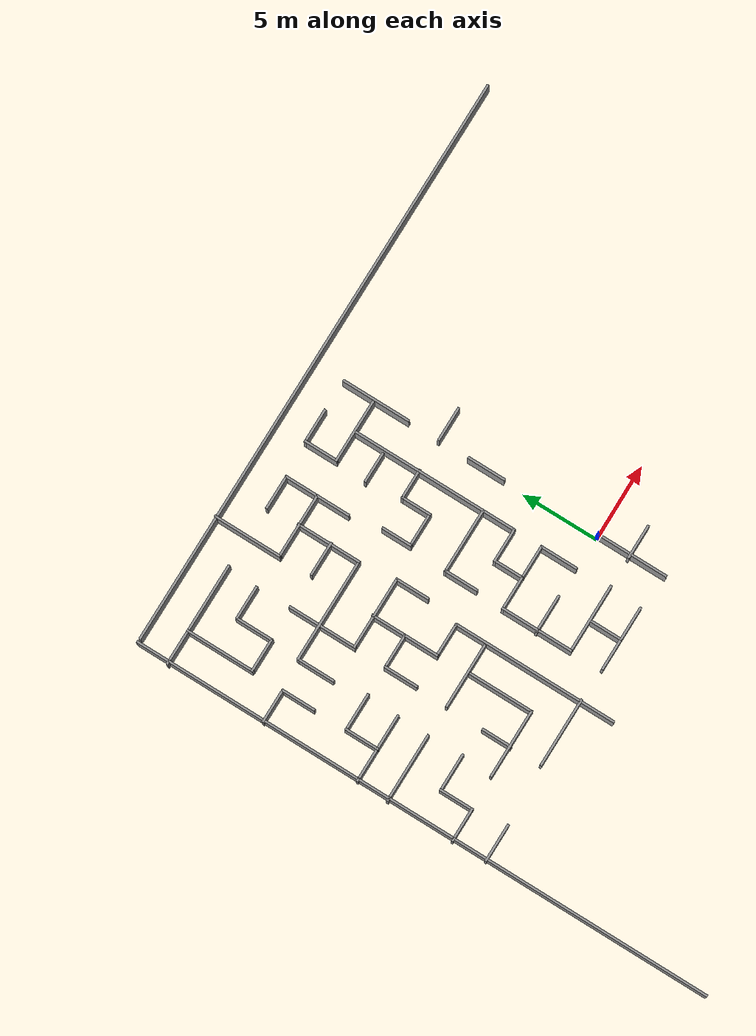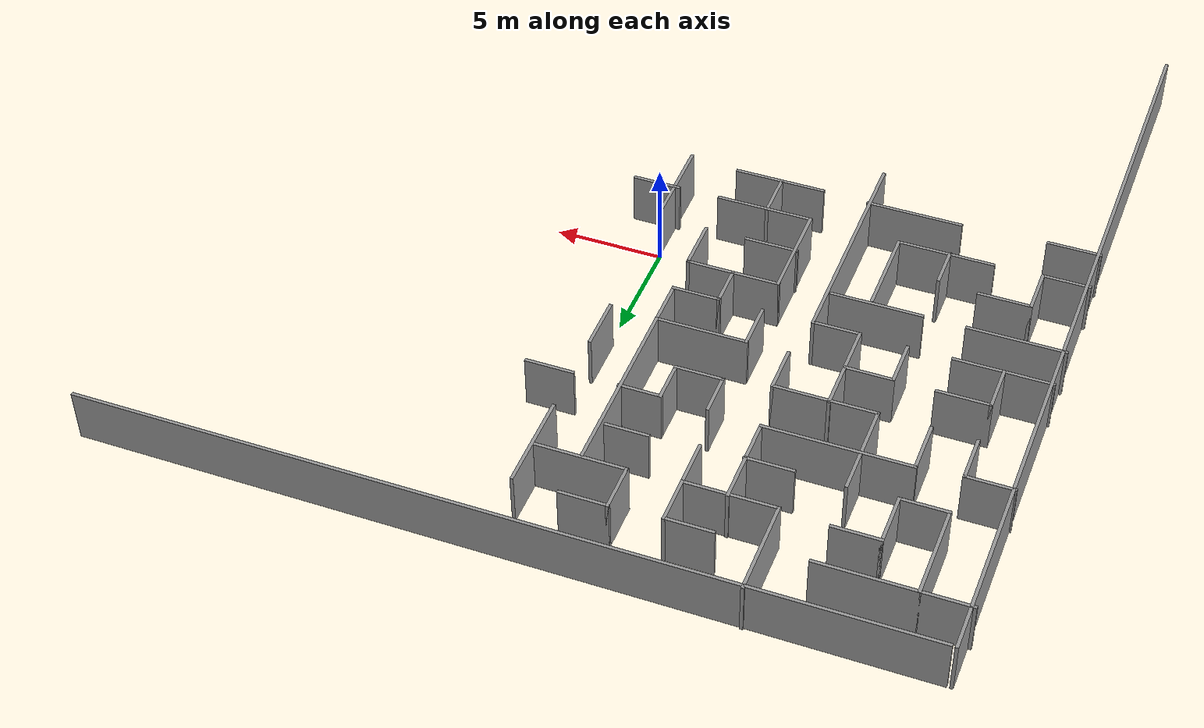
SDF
<sdf version="1.7">
 <model name="complex_maze">
  <pose>-0.002641 -0.038098 0 0 -0 0</pose>
  <link name="Wall_0">
   <collision name="Wall_0_Collision">
    <geometry><box><size>38.5 0.15 2.5</size></box></geometry>
    <pose>0 0 1.25 0 -0 0</pose>
   </collision>
   <visual name="Wall_0_Visual">
    <pose>0 0 1.25 0 -0 0</pose>
    <geometry><box><size>38.5 0.15 2.5</size></box></geometry>
    <material>
     <script><uri>file://media/materials/scripts/gazebo.material</uri><name>Gazebo/Grey</name></script>
     <ambient>1 1 1 1</ambient>
    </material>
    <meta><layer>0</layer></meta>
   </visual>
   <pose>-19.1643 0.058416 0 0 -0 -1.5708</pose>
  </link>
  <link name="Wall_10">
   <collision name="Wall_10_Collision">
    <geometry><box><size>2.5 0.15 2.5</size></box></geometry>
    <pose>0 0 1.25 0 -0 0</pose>
   </collision>
   <visual name="Wall_10_Visual">
    <pose>0 0 1.25 0 -0 0</pose>
    <geometry><box><size>2.5 0.15 2.5</size></box></geometry>
    <material>
     <script><uri>file://media/materials/scripts/gazebo.material</uri><name>Gazebo/Grey</name></script>
     <ambient>1 1 1 1</ambient>
    </material>
    <meta><layer>0</layer></meta>
   </visual>
   <pose>-14.9959 13.9601 0 0 -0 1.5708</pose>
  </link>
  <link name="Wall_11">
   <collision name="Wall_11_Collision">
    <geometry><box><size>2.25 0.15 2.5</size></box></geometry>
    <pose>0 0 1.25 0 -0 0</pose>
   </collision>
   <visual name="Wall_11_Visual">
    <pose>0 0 1.25 0 -0 0</pose>
    <geometry><box><size>2.25 0.15 2.5</size></box></geometry>
    <material>
     <script><uri>file://media/materials/scripts/gazebo.material</uri><name>Gazebo/Grey</name></script>
     <ambient>1 1 1 1</ambient>
    </material>
    <meta><layer>0</layer></meta>
   </visual>
   <pose>-13.9459 15.1351 0 0 -0 0</pose>
  </link>
  <link name="Wall_13">
   <collision name="Wall_13_Collision">
    <geometry><box><size>2.25 0.15 2.5</size></box></geometry>
    <pose>0 0 1.25 0 -0 0</pose>
   </collision>
   <visual name="Wall_13_Visual">
    <pose>0 0 1.25 0 -0 0</pose>
    <geometry><box><size>2.25 0.15 2.5</size></box></geometry>
    <material>
     <script><uri>file://media/materials/scripts/gazebo.material</uri><name>Gazebo/Grey</name></script>
     <ambient>1 1 1 1</ambient>
    </material>
    <meta><layer>0</layer></meta>
   </visual>
   <pose>-18.178 10.6988 0 0 -0 0</pose>
  </link>
  <link name="Wall_14">
   <collision name="Wall_14_Collision">
    <geometry><box><size>2.25 0.15 2.5</size></box></geometry>
    <pose>0 0 1.25 0 -0 0</pose>
   </collision>
   <visual name="Wall_14_Visual">
    <pose>0 0 1.25 0 -0 0</pose>
    <geometry><box><size>2.25 0.15 2.5</size></box></geometry>
    <material>
     <script><uri>file://media/materials/scripts/gazebo.material</uri><name>Gazebo/Grey</name></script>
     <ambient>1 1 1 1</ambient>
    </material>
    <meta><layer>0</layer></meta>
   </visual>
   <pose>-17.128 9.64878 0 0 -0 -1.5708</pose>
  </link>
  <link name="Wall_16">
   <collision name="Wall_16_Collision">
    <geometry><box><size>4.5 0.15 2.5</size></box></geometry>
    <pose>0 0 1.25 0 -0 0</pose>
   </collision>
   <visual name="Wall_16_Visual">
    <pose>0 0 1.25 0 -0 0</pose>
    <geometry><box><size>4.5 0.15 2.5</size></box></geometry>
    <material>
     <script><uri>file://media/materials/scripts/gazebo.material</uri><name>Gazebo/Grey</name></script>
     <ambient>1 1 1 1</ambient>
    </material>
    <meta><layer>0</layer></meta>
   </visual>
   <pose>-10.6596 17.1324 0 0 -0 -1.5708</pose>
  </link>
  <link name="Wall_164">
   <collision name="Wall_164_Collision">
    <geometry><box><size>2.5 0.15 2.5</size></box></geometry>
    <pose>0 0 1.25 0 -0 0</pose>
   </collision>
   <visual name="Wall_164_Visual">
    <pose>0 0 1.25 0 -0 0</pose>
    <geometry><box><size>2.5 0.15 2.5</size></box></geometry>
    <material>
     <script><uri>file://media/materials/scripts/gazebo.material</uri><name>Gazebo/Grey</name></script>
     <ambient>1 1 1 1</ambient>
    </material>
    <meta><layer>0</layer></meta>
   </visual>
   <pose>-18.0709 -4.36742 0 0 -0 0</pose>
  </link>
  <link name="Wall_167">
   <collision name="Wall_167_Collision">
    <geometry><box><size>2.25 0.15 2.5</size></box></geometry>
    <pose>0 0 1.25 0 -0 0</pose>
   </collision>
   <visual name="Wall_167_Visual">
    <pose>0 0 1.25 0 -0 0</pose>
    <geometry><box><size>2.25 0.15 2.5</size></box></geometry>
    <material>
     <script><uri>file://media/materials/scripts/gazebo.material</uri><name>Gazebo/Grey</name></script>
     <ambient>1 1 1 1</ambient>
    </material>
    <meta><layer>0</layer></meta>
   </visual>
   <pose>-18.2424 -2.13427 0 0 -0 0</pose>
  </link>
  <link name="Wall_168">
   <collision name="Wall_168_Collision">
    <geometry><box><size>2.25 0.15 2.5</size></box></geometry>
    <pose>0 0 1.25 0 -0 0</pose>
   </collision>
   <visual name="Wall_168_Visual">
    <pose>0 0 1.25 0 -0 0</pose>
    <geometry><box><size>2.25 0.15 2.5</size></box></geometry>
    <material>
     <script><uri>file://media/materials/scripts/gazebo.material</uri><name>Gazebo/Grey</name></script>
     <ambient>1 1 1 1</ambient>
    </material>
    <meta><layer>0</layer></meta>
   </visual>
   <pose>-17.1924 -1.08427 0 0 -0 1.5708</pose>
  </link>
  <link name="Wall_169">
   <collision name="Wall_169_Collision">
    <geometry><box><size>2.5 0.15 2.5</size></box></geometry>
    <pose>0 0 1.25 0 -0 0</pose>
   </collision>
   <visual name="Wall_169_Visual">
    <pose>0 0 1.25 0 -0 0</pose>
    <geometry><box><size>2.5 0.15 2.5</size></box></geometry>
    <material>
     <script><uri>file://media/materials/scripts/gazebo.material</uri><name>Gazebo/Grey</name></script>
     <ambient>1 1 1 1</ambient>
    </material>
    <meta><layer>0</layer></meta>
   </visual>
   <pose>-16.0174 -0.034269 0 0 -0 0</pose>
  </link>
  <link name="Wall_17">
   <collision name="Wall_17_Collision">
    <geometry><box><size>4.25 0.15 2.5</size></box></geometry>
    <pose>0 0 1.25 0 -0 0</pose>
   </collision>
   <visual name="Wall_17_Visual">
    <pose>0 0 1.25 0 -0 0</pose>
    <geometry><box><size>4.25 0.15 2.5</size></box></geometry>
    <material>
     <script><uri>file://media/materials/scripts/gazebo.material</uri><name>Gazebo/Grey</name></script>
     <ambient>1 1 1 1</ambient>
    </material>
    <meta><layer>0</layer></meta>
   </visual>
   <pose>-8.60959 14.9574 0 0 -0 0</pose>
  </link>
  <link name="Wall_171">
   <collision name="Wall_171_Collision">
    <geometry><box><size>4.5 0.15 2.5</size></box></geometry>
    <pose>0 0 1.25 0 -0 0</pose>
   </collision>
   <visual name="Wall_171_Visual">
    <pose>0 0 1.25 0 -0 0</pose>
    <geometry><box><size>4.5 0.15 2.5</size></box></geometry>
    <material>
     <script><uri>file://media/materials/scripts/gazebo.material</uri><name>Gazebo/Grey</name></script>
     <ambient>1 1 1 1</ambient>
    </material>
    <meta><layer>0</layer></meta>
   </visual>
   <pose>-17.1174 2.23898 0 0 -0 0</pose>
  </link>
  <link name="Wall_173">
   <collision name="Wall_173_Collision">
    <geometry><box><size>4.5 0.15 2.5</size></box></geometry>
    <pose>0 0 1.25 0 -0 0</pose>
   </collision>
   <visual name="Wall_173_Visual">
    <pose>0 0 1.25 0 -0 0</pose>
    <geometry><box><size>4.5 0.15 2.5</size></box></geometry>
    <material>
     <script><uri>file://media/materials/scripts/gazebo.material</uri><name>Gazebo/Grey</name></script>
     <ambient>1 1 1 1</ambient>
    </material>
    <meta><layer>0</layer></meta>
   </visual>
   <pose>-17.0724 4.30701 0 0 -0 0</pose>
  </link>
  <link name="Wall_175">
   <collision name="Wall_175_Collision">
    <geometry><box><size>2.25 0.15 2.5</size></box></geometry>
    <pose>0 0 1.25 0 -0 0</pose>
   </collision>
   <visual name="Wall_175_Visual">
    <pose>0 0 1.25 0 -0 0</pose>
    <geometry><box><size>2.25 0.15 2.5</size></box></geometry>
    <material>
     <script><uri>file://media/materials/scripts/gazebo.material</uri><name>Gazebo/Grey</name></script>
     <ambient>1 1 1 1</ambient>
    </material>
    <meta><layer>0</layer></meta>
   </visual>
   <pose>-17.1073 5.35701 0 0 -0 1.5708</pose>
  </link>
  <link name="Wall_176">
   <collision name="Wall_176_Collision">
    <geometry><box><size>2.5 0.15 2.5</size></box></geometry>
    <pose>0 0 1.25 0 -0 0</pose>
   </collision>
   <visual name="Wall_176_Visual">
    <pose>0 0 1.25 0 -0 0</pose>
    <geometry><box><size>2.5 0.15 2.5</size></box></geometry>
    <material>
     <script><uri>file://media/materials/scripts/gazebo.material</uri><name>Gazebo/Grey</name></script>
     <ambient>1 1 1 1</ambient>
    </material>
    <meta><layer>0</layer></meta>
   </visual>
   <pose>-15.9323 6.40701 0 0 -0 0</pose>
  </link>
  <link name="Wall_178">
   <collision name="Wall_178_Collision">
    <geometry><box><size>4.5 0.15 2.5</size></box></geometry>
    <pose>0 0 1.25 0 -0 0</pose>
   </collision>
   <visual name="Wall_178_Visual">
    <pose>0 0 1.25 0 -0 0</pose>
    <geometry><box><size>4.5 0.15 2.5</size></box></geometry>
    <material>
     <script><uri>file://media/materials/scripts/gazebo.material</uri><name>Gazebo/Grey</name></script>
     <ambient>1 1 1 1</ambient>
    </material>
    <meta><layer>0</layer></meta>
   </visual>
   <pose>-10.7335 6.41221 0 0 -0 -1.5708</pose>
  </link>
  <link name="Wall_179">
   <collision name="Wall_179_Collision">
    <geometry><box><size>2.25 0.15 2.5</size></box></geometry>
    <pose>0 0 1.25 0 -0 0</pose>
   </collision>
   <visual name="Wall_179_Visual">
    <pose>0 0 1.25 0 -0 0</pose>
    <geometry><box><size>2.25 0.15 2.5</size></box></geometry>
    <material>
     <script><uri>file://media/materials/scripts/gazebo.material</uri><name>Gazebo/Grey</name></script>
     <ambient>1 1 1 1</ambient>
    </material>
    <meta><layer>0</layer></meta>
   </visual>
   <pose>-9.68348 4.23721 0 0 -0 0</pose>
  </link>
  <link name="Wall_18">
   <collision name="Wall_18_Collision">
    <geometry><box><size>2.25 0.15 2.5</size></box></geometry>
    <pose>0 0 1.25 0 -0 0</pose>
   </collision>
   <visual name="Wall_18_Visual">
    <pose>0 0 1.25 0 -0 0</pose>
    <geometry><box><size>2.25 0.15 2.5</size></box></geometry>
    <material>
     <script><uri>file://media/materials/scripts/gazebo.material</uri><name>Gazebo/Grey</name></script>
     <ambient>1 1 1 1</ambient>
    </material>
    <meta><layer>0</layer></meta>
   </visual>
   <pose>-6.55959 16.0074 0 0 -0 1.5708</pose>
  </link>
  <link name="Wall_180">
   <collision name="Wall_180_Collision">
    <geometry><box><size>10.75 0.15 2.5</size></box></geometry>
    <pose>0 0 1.25 0 -0 0</pose>
   </collision>
   <visual name="Wall_180_Visual">
    <pose>0 0 1.25 0 -0 0</pose>
    <geometry><box><size>10.75 0.15 2.5</size></box></geometry>
    <material>
     <script><uri>file://media/materials/scripts/gazebo.material</uri><name>Gazebo/Grey</name></script>
     <ambient>1 1 1 1</ambient>
    </material>
    <meta><layer>0</layer></meta>
   </visual>
   <pose>-8.63348 -1.06279 0 0 -0 -1.5708</pose>
  </link>
  <link name="Wall_186">
   <collision name="Wall_186_Collision">
    <geometry><box><size>4.5 0.15 2.5</size></box></geometry>
    <pose>0 0 1.25 0 -0 0</pose>
   </collision>
   <visual name="Wall_186_Visual">
    <pose>0 0 1.25 0 -0 0</pose>
    <geometry><box><size>4.5 0.15 2.5</size></box></geometry>
    <material>
     <script><uri>file://media/materials/scripts/gazebo.material</uri><name>Gazebo/Grey</name></script>
     <ambient>1 1 1 1</ambient>
    </material>
    <meta><layer>0</layer></meta>
   </visual>
   <pose>-10.7387 -4.16035 0 0 -0 0</pose>
  </link>
  <link name="Wall_188">
   <collision name="Wall_188_Collision">
    <geometry><box><size>4.5 0.15 2.5</size></box></geometry>
    <pose>0 0 1.25 0 -0 0</pose>
   </collision>
   <visual name="Wall_188_Visual">
    <pose>0 0 1.25 0 -0 0</pose>
    <geometry><box><size>4.5 0.15 2.5</size></box></geometry>
    <material>
     <script><uri>file://media/materials/scripts/gazebo.material</uri><name>Gazebo/Grey</name></script>
     <ambient>1 1 1 1</ambient>
    </material>
    <meta><layer>0</layer></meta>
   </visual>
   <pose>-12.7922 -2.06677 0 0 -0 0</pose>
  </link>
  <link name="Wall_189">
   <collision name="Wall_189_Collision">
    <geometry><box><size>4.25 0.15 2.5</size></box></geometry>
    <pose>0 0 1.25 0 -0 0</pose>
   </collision>
   <visual name="Wall_189_Visual">
    <pose>0 0 1.25 0 -0 0</pose>
    <geometry><box><size>4.25 0.15 2.5</size></box></geometry>
    <material>
     <script><uri>file://media/materials/scripts/gazebo.material</uri><name>Gazebo/Grey</name></script>
     <ambient>1 1 1 1</ambient>
    </material>
    <meta><layer>0</layer></meta>
   </visual>
   <pose>-10.6172 -0.016769 0 0 -0 1.5708</pose>
  </link>
  <link name="Wall_19">
   <collision name="Wall_19_Collision">
    <geometry><box><size>2.25 0.15 2.5</size></box></geometry>
    <pose>0 0 1.25 0 -0 0</pose>
   </collision>
   <visual name="Wall_19_Visual">
    <pose>0 0 1.25 0 -0 0</pose>
    <geometry><box><size>2.25 0.15 2.5</size></box></geometry>
    <material>
     <script><uri>file://media/materials/scripts/gazebo.material</uri><name>Gazebo/Grey</name></script>
     <ambient>1 1 1 1</ambient>
    </material>
    <meta><layer>0</layer></meta>
   </visual>
   <pose>-7.60959 17.0574 0 0 -0 3.14159</pose>
  </link>
  <link name="Wall_191">
   <collision name="Wall_191_Collision">
    <geometry><box><size>2 0.15 2.5</size></box></geometry>
    <pose>0 0 1.25 0 -0 0</pose>
   </collision>
   <visual name="Wall_191_Visual">
    <pose>0 0 1.25 0 -0 0</pose>
    <geometry><box><size>2 0.15 2.5</size></box></geometry>
    <material>
     <script><uri>file://media/materials/scripts/gazebo.material</uri><name>Gazebo/Grey</name></script>
     <ambient>1 1 1 1</ambient>
    </material>
    <meta><layer>0</layer></meta>
   </visual>
   <pose>-12.9666 -1.18829 0 0 -0 1.5708</pose>
  </link>
  <link name="Wall_193">
   <collision name="Wall_193_Collision">
    <geometry><box><size>4.25 0.15 2.5</size></box></geometry>
    <pose>0 0 1.25 0 -0 0</pose>
   </collision>
   <visual name="Wall_193_Visual">
    <pose>0 0 1.25 0 -0 0</pose>
    <geometry><box><size>4.25 0.15 2.5</size></box></geometry>
    <material>
     <script><uri>file://media/materials/scripts/gazebo.material</uri><name>Gazebo/Grey</name></script>
     <ambient>1 1 1 1</ambient>
    </material>
    <meta><layer>0</layer></meta>
   </visual>
   <pose>-10.8701 2.21343 0 0 -0 0</pose>
  </link>
  <link name="Wall_195">
   <collision name="Wall_195_Collision">
    <geometry><box><size>2.25 0.15 2.5</size></box></geometry>
    <pose>0 0 1.25 0 -0 0</pose>
   </collision>
   <visual name="Wall_195_Visual">
    <pose>0 0 1.25 0 -0 0</pose>
    <geometry><box><size>2.25 0.15 2.5</size></box></geometry>
    <material>
     <script><uri>file://media/materials/scripts/gazebo.material</uri><name>Gazebo/Grey</name></script>
     <ambient>1 1 1 1</ambient>
    </material>
    <meta><layer>0</layer></meta>
   </visual>
   <pose>-12.8736 5.35701 0 0 -0 1.5708</pose>
  </link>
  <link name="Wall_196">
   <collision name="Wall_196_Collision">
    <geometry><box><size>2.25 0.15 2.5</size></box></geometry>
    <pose>0 0 1.25 0 -0 0</pose>
   </collision>
   <visual name="Wall_196_Visual">
    <pose>0 0 1.25 0 -0 0</pose>
    <geometry><box><size>2.25 0.15 2.5</size></box></geometry>
    <material>
     <script><uri>file://media/materials/scripts/gazebo.material</uri><name>Gazebo/Grey</name></script>
     <ambient>1 1 1 1</ambient>
    </material>
    <meta><layer>0</layer></meta>
   </visual>
   <pose>-11.8236 6.40701 0 0 -0 0</pose>
  </link>
  <link name="Wall_198">
   <collision name="Wall_198_Collision">
    <geometry><box><size>2 0.15 2.5</size></box></geometry>
    <pose>0 0 1.25 0 -0 0</pose>
   </collision>
   <visual name="Wall_198_Visual">
    <pose>0 0 1.25 0 -0 0</pose>
    <geometry><box><size>2 0.15 2.5</size></box></geometry>
    <material>
     <script><uri>file://media/materials/scripts/gazebo.material</uri><name>Gazebo/Grey</name></script>
     <ambient>1 1 1 1</ambient>
    </material>
    <meta><layer>0</layer></meta>
   </visual>
   <pose>-3.4347 13.0535 0 0 -0 0</pose>
  </link>
  <link name="Wall_205">
   <collision name="Wall_205_Collision">
    <geometry><box><size>2.5 0.15 2.5</size></box></geometry>
    <pose>0 0 1.25 0 -0 0</pose>
   </collision>
   <visual name="Wall_205_Visual">
    <pose>0 0 1.25 0 -0 0</pose>
    <geometry><box><size>2.5 0.15 2.5</size></box></geometry>
    <material>
     <script><uri>file://media/materials/scripts/gazebo.material</uri><name>Gazebo/Grey</name></script>
     <ambient>1 1 1 1</ambient>
    </material>
    <meta><layer>0</layer></meta>
   </visual>
   <pose>-0.07052 7.51721 0 0 -0 -1.5708</pose>
  </link>
  <link name="Wall_21">
   <collision name="Wall_21_Collision">
    <geometry><box><size>2.25 0.15 2.5</size></box></geometry>
    <pose>0 0 1.25 0 -0 0</pose>
   </collision>
   <visual name="Wall_21_Visual">
    <pose>0 0 1.25 0 -0 0</pose>
    <geometry><box><size>2.25 0.15 2.5</size></box></geometry>
    <material>
     <script><uri>file://media/materials/scripts/gazebo.material</uri><name>Gazebo/Grey</name></script>
     <ambient>1 1 1 1</ambient>
    </material>
    <meta><layer>0</layer></meta>
   </visual>
   <pose>-6.55959 13.9074 0 0 -0 -1.5708</pose>
  </link>
  <link name="Wall_216">
   <collision name="Wall_216_Collision">
    <geometry><box><size>4.5 0.15 2.5</size></box></geometry>
    <pose>0 0 1.25 0 -0 0</pose>
   </collision>
   <visual name="Wall_216_Visual">
    <pose>0 0 1.25 0 -0 0</pose>
    <geometry><box><size>4.5 0.15 2.5</size></box></geometry>
    <material>
     <script><uri>file://media/materials/scripts/gazebo.material</uri><name>Gazebo/Grey</name></script>
     <ambient>1 1 1 1</ambient>
    </material>
    <meta><layer>0</layer></meta>
   </visual>
   <pose>0.09928 -2.33679 0 0 -0 -1.5708</pose>
  </link>
  <link name="Wall_218">
   <collision name="Wall_218_Collision">
    <geometry><box><size>2.25 0.15 2.5</size></box></geometry>
    <pose>0 0 1.25 0 -0 0</pose>
   </collision>
   <visual name="Wall_218_Visual">
    <pose>0 0 1.25 0 -0 0</pose>
    <geometry><box><size>2.25 0.15 2.5</size></box></geometry>
    <material>
     <script><uri>file://media/materials/scripts/gazebo.material</uri><name>Gazebo/Grey</name></script>
     <ambient>1 1 1 1</ambient>
    </material>
    <meta><layer>0</layer></meta>
   </visual>
   <pose>0.948673 -2.14549 0 0 -0 0</pose>
  </link>
  <link name="Wall_228">
   <collision name="Wall_228_Collision">
    <geometry><box><size>2.25 0.15 2.5</size></box></geometry>
    <pose>0 0 1.25 0 -0 0</pose>
   </collision>
   <visual name="Wall_228_Visual">
    <pose>0 0 1.25 0 -0 0</pose>
    <geometry><box><size>2.25 0.15 2.5</size></box></geometry>
    <material>
     <script><uri>file://media/materials/scripts/gazebo.material</uri><name>Gazebo/Grey</name></script>
     <ambient>1 1 1 1</ambient>
    </material>
    <meta><layer>0</layer></meta>
   </visual>
   <pose>-2.24298 5.34729 0 0 -0 -1.5708</pose>
  </link>
  <link name="Wall_229">
   <collision name="Wall_229_Collision">
    <geometry><box><size>2.25 0.15 2.5</size></box></geometry>
    <pose>0 0 1.25 0 -0 0</pose>
   </collision>
   <visual name="Wall_229_Visual">
    <pose>0 0 1.25 0 -0 0</pose>
    <geometry><box><size>2.25 0.15 2.5</size></box></geometry>
    <material>
     <script><uri>file://media/materials/scripts/gazebo.material</uri><name>Gazebo/Grey</name></script>
     <ambient>1 1 1 1</ambient>
    </material>
    <meta><layer>0</layer></meta>
   </visual>
   <pose>-3.29298 4.29729 0 0 -0 3.14159</pose>
  </link>
  <link name="Wall_23">
   <collision name="Wall_23_Collision">
    <geometry><box><size>4.25 0.15 2.5</size></box></geometry>
    <pose>0 0 1.25 0 -0 0</pose>
   </collision>
   <visual name="Wall_23_Visual">
    <pose>0 0 1.25 0 -0 0</pose>
    <geometry><box><size>4.25 0.15 2.5</size></box></geometry>
    <material>
     <script><uri>file://media/materials/scripts/gazebo.material</uri><name>Gazebo/Grey</name></script>
     <ambient>1 1 1 1</ambient>
    </material>
    <meta><layer>0</layer></meta>
   </visual>
   <pose>-8.52755 12.9531 0 0 -0 -1.5708</pose>
  </link>
  <link name="Wall_230">
   <collision name="Wall_230_Collision">
    <geometry><box><size>2 0.15 2.5</size></box></geometry>
    <pose>0 0 1.25 0 -0 0</pose>
   </collision>
   <visual name="Wall_230_Visual">
    <pose>0 0 1.25 0 -0 0</pose>
    <geometry><box><size>2 0.15 2.5</size></box></geometry>
    <material>
     <script><uri>file://media/materials/scripts/gazebo.material</uri><name>Gazebo/Grey</name></script>
     <ambient>1 1 1 1</ambient>
    </material>
    <meta><layer>0</layer></meta>
   </visual>
   <pose>-4.34298 3.37229 0 0 -0 -1.5708</pose>
  </link>
  <link name="Wall_231">
   <collision name="Wall_231_Collision">
    <geometry><box><size>2.25 0.15 2.5</size></box></geometry>
    <pose>0 0 1.25 0 -0 0</pose>
   </collision>
   <visual name="Wall_231_Visual">
    <pose>0 0 1.25 0 -0 0</pose>
    <geometry><box><size>2.25 0.15 2.5</size></box></geometry>
    <material>
     <script><uri>file://media/materials/scripts/gazebo.material</uri><name>Gazebo/Grey</name></script>
     <ambient>1 1 1 1</ambient>
    </material>
    <meta><layer>0</layer></meta>
   </visual>
   <pose>-3.29298 2.44729 0 0 -0 0</pose>
  </link>
  <link name="Wall_232">
   <collision name="Wall_232_Collision">
    <geometry><box><size>2.5 0.15 2.5</size></box></geometry>
    <pose>0 0 1.25 0 -0 0</pose>
   </collision>
   <visual name="Wall_232_Visual">
    <pose>0 0 1.25 0 -0 0</pose>
    <geometry><box><size>2.5 0.15 2.5</size></box></geometry>
    <material>
     <script><uri>file://media/materials/scripts/gazebo.material</uri><name>Gazebo/Grey</name></script>
     <ambient>1 1 1 1</ambient>
    </material>
    <meta><layer>0</layer></meta>
   </visual>
   <pose>-2.24298 1.27229 0 0 -0 -1.5708</pose>
  </link>
  <link name="Wall_234">
   <collision name="Wall_234_Collision">
    <geometry><box><size>2.25 0.15 2.5</size></box></geometry>
    <pose>0 0 1.25 0 -0 0</pose>
   </collision>
   <visual name="Wall_234_Visual">
    <pose>0 0 1.25 0 -0 0</pose>
    <geometry><box><size>2.25 0.15 2.5</size></box></geometry>
    <material>
     <script><uri>file://media/materials/scripts/gazebo.material</uri><name>Gazebo/Grey</name></script>
     <ambient>1 1 1 1</ambient>
    </material>
    <meta><layer>0</layer></meta>
   </visual>
   <pose>-5.39298 2.44729 0 0 -0 3.14159</pose>
  </link>
  <link name="Wall_235">
   <collision name="Wall_235_Collision">
    <geometry><box><size>4.75 0.15 2.5</size></box></geometry>
    <pose>0 0 1.25 0 -0 0</pose>
   </collision>
   <visual name="Wall_235_Visual">
    <pose>0 0 1.25 0 -0 0</pose>
    <geometry><box><size>4.75 0.15 2.5</size></box></geometry>
    <material>
     <script><uri>file://media/materials/scripts/gazebo.material</uri><name>Gazebo/Grey</name></script>
     <ambient>1 1 1 1</ambient>
    </material>
    <meta><layer>0</layer></meta>
   </visual>
   <pose>-6.44298 0.147291 0 0 -0 -1.5708</pose>
  </link>
  <link name="Wall_236">
   <collision name="Wall_236_Collision">
    <geometry><box><size>4.5 0.15 2.5</size></box></geometry>
    <pose>0 0 1.25 0 -0 0</pose>
   </collision>
   <visual name="Wall_236_Visual">
    <pose>0 0 1.25 0 -0 0</pose>
    <geometry><box><size>4.5 0.15 2.5</size></box></geometry>
    <material>
     <script><uri>file://media/materials/scripts/gazebo.material</uri><name>Gazebo/Grey</name></script>
     <ambient>1 1 1 1</ambient>
    </material>
    <meta><layer>0</layer></meta>
   </visual>
   <pose>-4.26798 -2.15271 0 0 -0 0</pose>
  </link>
  <link name="Wall_238">
   <collision name="Wall_238_Collision">
    <geometry><box><size>2.5 0.15 2.5</size></box></geometry>
    <pose>0 0 1.25 0 -0 0</pose>
   </collision>
   <visual name="Wall_238_Visual">
    <pose>0 0 1.25 0 -0 0</pose>
    <geometry><box><size>2.5 0.15 2.5</size></box></geometry>
    <material>
     <script><uri>file://media/materials/scripts/gazebo.material</uri><name>Gazebo/Grey</name></script>
     <ambient>1 1 1 1</ambient>
    </material>
    <meta><layer>0</layer></meta>
   </visual>
   <pose>-5.34663 0.101613 0 0 -0 0</pose>
  </link>
  <link name="Wall_24">
   <collision name="Wall_24_Collision">
    <geometry><box><size>6.75 0.15 2.5</size></box></geometry>
    <pose>0 0 1.25 0 -0 0</pose>
   </collision>
   <visual name="Wall_24_Visual">
    <pose>0 0 1.25 0 -0 0</pose>
    <geometry><box><size>6.75 0.15 2.5</size></box></geometry>
    <material>
     <script><uri>file://media/materials/scripts/gazebo.material</uri><name>Gazebo/Grey</name></script>
     <ambient>1 1 1 1</ambient>
    </material>
    <meta><layer>0</layer></meta>
   </visual>
   <pose>-11.8275 10.9031 0 0 -0 3.14159</pose>
  </link>
  <link name="Wall_240">
   <collision name="Wall_240_Collision">
    <geometry><box><size>2.25 0.15 2.5</size></box></geometry>
    <pose>0 0 1.25 0 -0 0</pose>
   </collision>
   <visual name="Wall_240_Visual">
    <pose>0 0 1.25 0 -0 0</pose>
    <geometry><box><size>2.25 0.15 2.5</size></box></geometry>
    <material>
     <script><uri>file://media/materials/scripts/gazebo.material</uri><name>Gazebo/Grey</name></script>
     <ambient>1 1 1 1</ambient>
    </material>
    <meta><layer>0</layer></meta>
   </visual>
   <pose>-4.38153 -3.19549 0 0 -0 -1.5708</pose>
  </link>
  <link name="Wall_243">
   <collision name="Wall_243_Collision">
    <geometry><box><size>4.25 0.15 2.5</size></box></geometry>
    <pose>0 0 1.25 0 -0 0</pose>
   </collision>
   <visual name="Wall_243_Visual">
    <pose>0 0 1.25 0 -0 0</pose>
    <geometry><box><size>4.25 0.15 2.5</size></box></geometry>
    <material>
     <script><uri>file://media/materials/scripts/gazebo.material</uri><name>Gazebo/Grey</name></script>
     <ambient>1 1 1 1</ambient>
    </material>
    <meta><layer>0</layer></meta>
   </visual>
   <pose>-4.31112 -4.25178 0 0 -0 0</pose>
  </link>
  <link name="Wall_25">
   <collision name="Wall_25_Collision">
    <geometry><box><size>2.5 0.15 2.5</size></box></geometry>
    <pose>0 0 1.25 0 -0 0</pose>
   </collision>
   <visual name="Wall_25_Visual">
    <pose>0 0 1.25 0 -0 0</pose>
    <geometry><box><size>2.5 0.15 2.5</size></box></geometry>
    <material>
     <script><uri>file://media/materials/scripts/gazebo.material</uri><name>Gazebo/Grey</name></script>
     <ambient>1 1 1 1</ambient>
    </material>
    <meta><layer>0</layer></meta>
   </visual>
   <pose>-15.1275 9.72808 0 0 -0 -1.5708</pose>
  </link>
  <link name="Wall_27">
   <collision name="Wall_27_Collision">
    <geometry><box><size>4.5 0.15 2.5</size></box></geometry>
    <pose>0 0 1.25 0 -0 0</pose>
   </collision>
   <visual name="Wall_27_Visual">
    <pose>0 0 1.25 0 -0 0</pose>
    <geometry><box><size>4.5 0.15 2.5</size></box></geometry>
    <material>
     <script><uri>file://media/materials/scripts/gazebo.material</uri><name>Gazebo/Grey</name></script>
     <ambient>1 1 1 1</ambient>
    </material>
    <meta><layer>0</layer></meta>
   </visual>
   <pose>-12.8319 10.696 0 0 -0 -1.5708</pose>
  </link>
  <link name="Wall_28">
   <collision name="Wall_28_Collision">
    <geometry><box><size>4.75 0.15 2.5</size></box></geometry>
    <pose>0 0 1.25 0 -0 0</pose>
   </collision>
   <visual name="Wall_28_Visual">
    <pose>0 0 1.25 0 -0 0</pose>
    <geometry><box><size>4.75 0.15 2.5</size></box></geometry>
    <material>
     <script><uri>file://media/materials/scripts/gazebo.material</uri><name>Gazebo/Grey</name></script>
     <ambient>1 1 1 1</ambient>
    </material>
    <meta><layer>0</layer></meta>
   </visual>
   <pose>-10.5319 8.52104 0 0 -0 0</pose>
  </link>
  <link name="Wall_29">
   <collision name="Wall_29_Collision">
    <geometry><box><size>2.25 0.15 2.5</size></box></geometry>
    <pose>0 0 1.25 0 -0 0</pose>
   </collision>
   <visual name="Wall_29_Visual">
    <pose>0 0 1.25 0 -0 0</pose>
    <geometry><box><size>2.25 0.15 2.5</size></box></geometry>
    <material>
     <script><uri>file://media/materials/scripts/gazebo.material</uri><name>Gazebo/Grey</name></script>
     <ambient>1 1 1 1</ambient>
    </material>
    <meta><layer>0</layer></meta>
   </visual>
   <pose>-8.23185 7.47104 0 0 -0 -1.5708</pose>
  </link>
  <link name="Wall_31">
   <collision name="Wall_31_Collision">
    <geometry><box><size>2.25 0.15 2.5</size></box></geometry>
    <pose>0 0 1.25 0 -0 0</pose>
   </collision>
   <visual name="Wall_31_Visual">
    <pose>0 0 1.25 0 -0 0</pose>
    <geometry><box><size>2.25 0.15 2.5</size></box></geometry>
    <material>
     <script><uri>file://media/materials/scripts/gazebo.material</uri><name>Gazebo/Grey</name></script>
     <ambient>1 1 1 1</ambient>
    </material>
    <meta><layer>0</layer></meta>
   </visual>
   <pose>-9.52913 12.8308 0 0 -0 0</pose>
  </link>
  <link name="Wall_38">
   <collision name="Wall_38_Collision">
    <geometry><box><size>4.5 0.15 2.5</size></box></geometry>
    <pose>0 0 1.25 0 -0 0</pose>
   </collision>
   <visual name="Wall_38_Visual">
    <pose>0 0 1.25 0 -0 0</pose>
    <geometry><box><size>4.5 0.15 2.5</size></box></geometry>
    <material>
     <script><uri>file://media/materials/scripts/gazebo.material</uri><name>Gazebo/Grey</name></script>
     <ambient>1 1 1 1</ambient>
    </material>
    <meta><layer>0</layer></meta>
   </visual>
   <pose>-0.082597 15.0003 0 0 -0 -1.5708</pose>
  </link>
  <link name="Wall_4">
   <collision name="Wall_4_Collision">
    <geometry><box><size>38 0.15 2.5</size></box></geometry>
    <pose>0 0 1.25 0 -0 0</pose>
   </collision>
   <visual name="Wall_4_Visual">
    <pose>0 0 1.25 0 -0 0</pose>
    <geometry><box><size>38 0.15 2.5</size></box></geometry>
    <material>
     <script><uri>file://media/materials/scripts/gazebo.material</uri><name>Gazebo/Grey</name></script>
     <ambient>1 1 1 1</ambient>
    </material>
    <meta><layer>0</layer></meta>
   </visual>
   <pose>0.010693 19.2334 0 0 -0 3.14159</pose>
  </link>
  <link name="Wall_41">
   <collision name="Wall_41_Collision">
    <geometry><box><size>2.25 0.15 2.5</size></box></geometry>
    <pose>0 0 1.25 0 -0 0</pose>
   </collision>
   <visual name="Wall_41_Visual">
    <pose>0 0 1.25 0 -0 0</pose>
    <geometry><box><size>2.25 0.15 2.5</size></box></geometry>
    <material>
     <script><uri>file://media/materials/scripts/gazebo.material</uri><name>Gazebo/Grey</name></script>
     <ambient>1 1 1 1</ambient>
    </material>
    <meta><layer>0</layer></meta>
   </visual>
   <pose>0.967403 10.7253 0 0 -0 3.14159</pose>
  </link>
  <link name="Wall_43">
   <collision name="Wall_43_Collision">
    <geometry><box><size>2.25 0.15 2.5</size></box></geometry>
    <pose>0 0 1.25 0 -0 0</pose>
   </collision>
   <visual name="Wall_43_Visual">
    <pose>0 0 1.25 0 -0 0</pose>
    <geometry><box><size>2.25 0.15 2.5</size></box></geometry>
    <material>
     <script><uri>file://media/materials/scripts/gazebo.material</uri><name>Gazebo/Grey</name></script>
     <ambient>1 1 1 1</ambient>
    </material>
    <meta><layer>0</layer></meta>
   </visual>
   <pose>-3.18143 17.2156 0 0 -0 3.14159</pose>
  </link>
  <link name="Wall_44">
   <collision name="Wall_44_Collision">
    <geometry><box><size>2.25 0.15 2.5</size></box></geometry>
    <pose>0 0 1.25 0 -0 0</pose>
   </collision>
   <visual name="Wall_44_Visual">
    <pose>0 0 1.25 0 -0 0</pose>
    <geometry><box><size>2.25 0.15 2.5</size></box></geometry>
    <material>
     <script><uri>file://media/materials/scripts/gazebo.material</uri><name>Gazebo/Grey</name></script>
     <ambient>1 1 1 1</ambient>
    </material>
    <meta><layer>0</layer></meta>
   </visual>
   <pose>-4.23143 16.1656 0 0 -0 -1.5708</pose>
  </link>
  <link name="Wall_45">
   <collision name="Wall_45_Collision">
    <geometry><box><size>4.25 0.15 2.5</size></box></geometry>
    <pose>0 0 1.25 0 -0 0</pose>
   </collision>
   <visual name="Wall_45_Visual">
    <pose>0 0 1.25 0 -0 0</pose>
    <geometry><box><size>4.25 0.15 2.5</size></box></geometry>
    <material>
     <script><uri>file://media/materials/scripts/gazebo.material</uri><name>Gazebo/Grey</name></script>
     <ambient>1 1 1 1</ambient>
    </material>
    <meta><layer>0</layer></meta>
   </visual>
   <pose>-2.18143 15.1156 0 0 -0 0</pose>
  </link>
  <link name="Wall_47">
   <collision name="Wall_47_Collision">
    <geometry><box><size>8.75 0.15 2.5</size></box></geometry>
    <pose>0 0 1.25 0 -0 0</pose>
   </collision>
   <visual name="Wall_47_Visual">
    <pose>0 0 1.25 0 -0 0</pose>
    <geometry><box><size>8.75 0.15 2.5</size></box></geometry>
    <material>
     <script><uri>file://media/materials/scripts/gazebo.material</uri><name>Gazebo/Grey</name></script>
     <ambient>1 1 1 1</ambient>
    </material>
    <meta><layer>0</layer></meta>
   </visual>
   <pose>-2.24298 10.6973 0 0 -0 -1.5708</pose>
  </link>
  <link name="Wall_48">
   <collision name="Wall_48_Collision">
    <geometry><box><size>4.25 0.15 2.5</size></box></geometry>
    <pose>0 0 1.25 0 -0 0</pose>
   </collision>
   <visual name="Wall_48_Visual">
    <pose>0 0 1.25 0 -0 0</pose>
    <geometry><box><size>4.25 0.15 2.5</size></box></geometry>
    <material>
     <script><uri>file://media/materials/scripts/gazebo.material</uri><name>Gazebo/Grey</name></script>
     <ambient>1 1 1 1</ambient>
    </material>
    <meta><layer>0</layer></meta>
   </visual>
   <pose>-4.29298 6.39729 0 0 -0 3.14159</pose>
  </link>
  <link name="Wall_49">
   <collision name="Wall_49_Collision">
    <geometry><box><size>2.25 0.15 2.5</size></box></geometry>
    <pose>0 0 1.25 0 -0 0</pose>
   </collision>
   <visual name="Wall_49_Visual">
    <pose>0 0 1.25 0 -0 0</pose>
    <geometry><box><size>2.25 0.15 2.5</size></box></geometry>
    <material>
     <script><uri>file://media/materials/scripts/gazebo.material</uri><name>Gazebo/Grey</name></script>
     <ambient>1 1 1 1</ambient>
    </material>
    <meta><layer>0</layer></meta>
   </visual>
   <pose>-6.34298 5.34729 0 0 -0 -1.5708</pose>
  </link>
  <link name="Wall_51">
   <collision name="Wall_51_Collision">
    <geometry><box><size>2 0.15 2.5</size></box></geometry>
    <pose>0 0 1.25 0 -0 0</pose>
   </collision>
   <visual name="Wall_51_Visual">
    <pose>0 0 1.25 0 -0 0</pose>
    <geometry><box><size>2 0.15 2.5</size></box></geometry>
    <material>
     <script><uri>file://media/materials/scripts/gazebo.material</uri><name>Gazebo/Grey</name></script>
     <ambient>1 1 1 1</ambient>
    </material>
    <meta><layer>0</layer></meta>
   </visual>
   <pose>-3.12172 10.7413 0 0 -0 3.14159</pose>
  </link>
  <link name="Wall_52">
   <collision name="Wall_52_Collision">
    <geometry><box><size>2 0.15 2.5</size></box></geometry>
    <pose>0 0 1.25 0 -0 0</pose>
   </collision>
   <visual name="Wall_52_Visual">
    <pose>0 0 1.25 0 -0 0</pose>
    <geometry><box><size>2 0.15 2.5</size></box></geometry>
    <material>
     <script><uri>file://media/materials/scripts/gazebo.material</uri><name>Gazebo/Grey</name></script>
     <ambient>1 1 1 1</ambient>
    </material>
    <meta><layer>0</layer></meta>
   </visual>
   <pose>-4.04671 9.81626 0 0 -0 -1.5708</pose>
  </link>
  <link name="Wall_53">
   <collision name="Wall_53_Collision">
    <geometry><box><size>2.25 0.15 2.5</size></box></geometry>
    <pose>0 0 1.25 0 -0 0</pose>
   </collision>
   <visual name="Wall_53_Visual">
    <pose>0 0 1.25 0 -0 0</pose>
    <geometry><box><size>2.25 0.15 2.5</size></box></geometry>
    <material>
     <script><uri>file://media/materials/scripts/gazebo.material</uri><name>Gazebo/Grey</name></script>
     <ambient>1 1 1 1</ambient>
    </material>
    <meta><layer>0</layer></meta>
   </visual>
   <pose>-5.09671 8.89126 0 0 -0 3.14159</pose>
  </link>
  <link name="Wall_54">
   <collision name="Wall_54_Collision">
    <geometry><box><size>2 0.15 2.5</size></box></geometry>
    <pose>0 0 1.25 0 -0 0</pose>
   </collision>
   <visual name="Wall_54_Visual">
    <pose>0 0 1.25 0 -0 0</pose>
    <geometry><box><size>2 0.15 2.5</size></box></geometry>
    <material>
     <script><uri>file://media/materials/scripts/gazebo.material</uri><name>Gazebo/Grey</name></script>
     <ambient>1 1 1 1</ambient>
    </material>
    <meta><layer>0</layer></meta>
   </visual>
   <pose>-6.14672 9.81626 0 0 -0 1.5708</pose>
  </link>
  <link name="Wall_6">
   <collision name="Wall_6_Collision">
    <geometry><box><size>6.75 0.15 2.5</size></box></geometry>
    <pose>0 0 1.25 0 -0 0</pose>
   </collision>
   <visual name="Wall_6_Visual">
    <pose>0 0 1.25 0 -0 0</pose>
    <geometry><box><size>6.75 0.15 2.5</size></box></geometry>
    <material>
     <script><uri>file://media/materials/scripts/gazebo.material</uri><name>Gazebo/Grey</name></script>
     <ambient>1 1 1 1</ambient>
    </material>
    <meta><layer>0</layer></meta>
   </visual>
   <pose>-16.0084 17.1351 0 0 -0 0</pose>
  </link>
  <link name="Wall_8">
   <collision name="Wall_8_Collision">
    <geometry><box><size>4.5 0.15 2.5</size></box></geometry>
    <pose>0 0 1.25 0 -0 0</pose>
   </collision>
   <visual name="Wall_8_Visual">
    <pose>0 0 1.25 0 -0 0</pose>
    <geometry><box><size>4.5 0.15 2.5</size></box></geometry>
    <material>
     <script><uri>file://media/materials/scripts/gazebo.material</uri><name>Gazebo/Grey</name></script>
     <ambient>1 1 1 1</ambient>
    </material>
    <meta><layer>0</layer></meta>
   </visual>
   <pose>-17.0959 14.9601 0 0 -0 -1.5708</pose>
  </link>
  <link name="Wall_9">
   <collision name="Wall_9_Collision">
    <geometry><box><size>2.25 0.15 2.5</size></box></geometry>
    <pose>0 0 1.25 0 -0 0</pose>
   </collision>
   <visual name="Wall_9_Visual">
    <pose>0 0 1.25 0 -0 0</pose>
    <geometry><box><size>2.25 0.15 2.5</size></box></geometry>
    <material>
     <script><uri>file://media/materials/scripts/gazebo.material</uri><name>Gazebo/Grey</name></script>
     <ambient>1 1 1 1</ambient>
    </material>
    <meta><layer>0</layer></meta>
   </visual>
   <pose>-16.0459 12.7851 0 0 -0 0</pose>
  </link>
  <static>1</static>
 </model>
</sdf>
